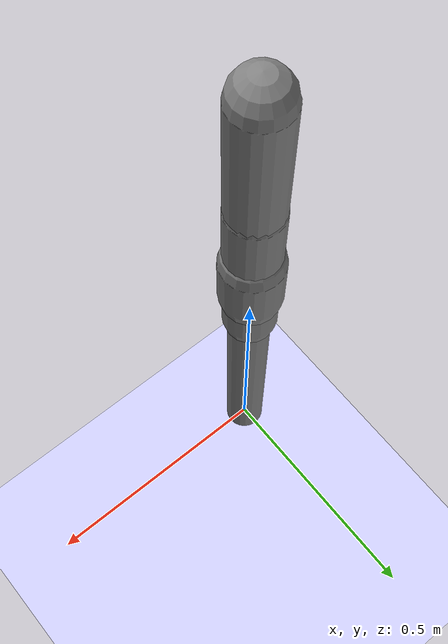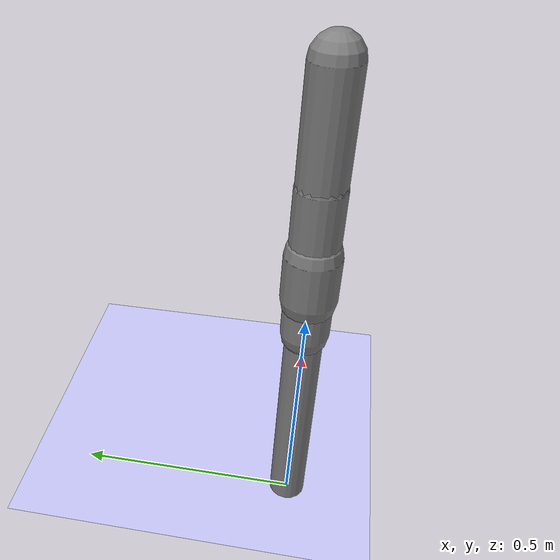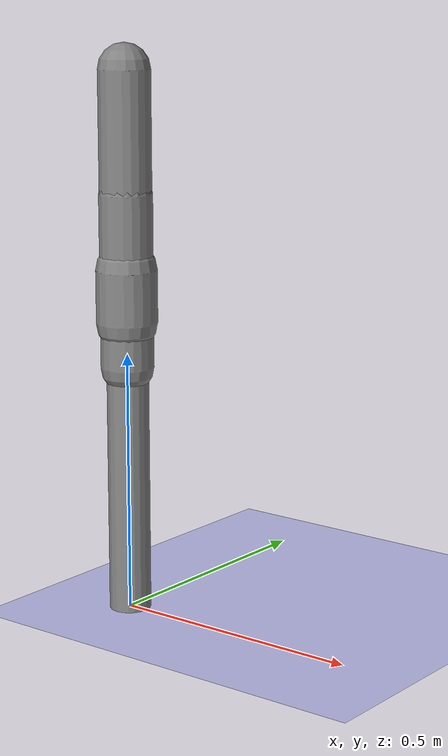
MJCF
<?xml version='1.0' encoding='UTF-8'?>
<mujoco model="robot_model">
  <worldbody>
    <light name="light" pos="0 -3 10" dir="0 0.5 -1" diffuse=".8 .8 .8" specular="0.1 0.1 0.1"/>
    <geom name="floor" type="plane" size="10.0 10.0 0.1" pos="0 0 0" rgba="0.8 0.8 1 1" contype="2" conaffinity="1"/>
    <body name="limb0" pos="0 0 0">
      <geom type="capsule" fromto="0 0 0 0 0 0.596208529628742" size="0.04" density="990.1812429592799" contype="1" conaffinity="2"/>
      <site type="sphere" size="0.01" name="limb0_site0" pos="0 0 0.3439572576339297"/>
      <site type="sphere" size="0.01" name="limb0_site1" pos="0 0 0.561453242330809"/>
      <freejoint name="limb0_root"/>
      <body name="limb1" pos="0 0 0.3439572576339297">
        <geom type="capsule" fromto="0 0 0 0 0 0.2108483557747831" size="0.03176305440673138" density="688.7771406626807" contype="1" conaffinity="2"/>
        <site type="sphere" size="0.01" name="limb1_site0" pos="0 0 0.1315488757351795"/>
        <site type="sphere" size="0.01" name="limb1_site1" pos="0 0 0.20255461164896735"/>
        <body name="limb2" pos="0 0 0.1315488757351795">
          <geom type="capsule" fromto="0 0 0 0 0 0.328612757384137" size="0.05065179609246566" density="732.5468624136837" contype="1" conaffinity="2"/>
          <joint name="joint_limb1_limb2_0" type="hinge" axis="0 1 0" range="-79.19027832141104 79.19027832141104" damping="5.0"/>
        </body>
        <body name="limb3" pos="0 0 0.20255461164896735">
          <geom type="capsule" fromto="0 0 0 0 0 0.4823923729216987" size="0.02930993783622847" density="1063.016225397816" contype="1" conaffinity="2"/>
          <site type="sphere" size="0.01" name="limb3_site0" pos="0 0 0.21210766104123838"/>
          <site type="sphere" size="0.01" name="limb3_site1" pos="0 0 0.2445975136120204"/>
          <body name="limb4" pos="0 0 0.21210766104123838">
            <geom type="capsule" fromto="0 0 0 0 0 0.27490939239463524" size="0.04935019937932756" density="1200.0" contype="1" conaffinity="2"/>
            <joint name="joint_limb3_limb4_0" type="hinge" axis="0 1 0" range="-98.89882698854483 98.89882698854483" damping="5.0"/>
          </body>
          <body name="limb5" pos="0 0 0.2445975136120204">
            <geom type="capsule" fromto="0 0 0 0 0 0.1797215636428" size="0.026091798513952557" density="745.8119714770129" contype="1" conaffinity="2"/>
            <joint name="joint_limb3_limb5_0" type="hinge" axis="1 0 0" range="-43.50354587107485 43.50354587107485" damping="5.0"/>
          </body>
          <joint name="joint_limb1_limb3_0" type="hinge" axis="0 1 0" range="-113.63308743755412 113.63308743755412" damping="5.0"/>
        </body>
        <joint name="joint_limb0_limb1_0" type="hinge" axis="0 1 0" range="-72.78200781124774 72.78200781124774" damping="5.0"/>
      </body>
      <body name="limb6" pos="0 0 0.561453242330809">
        <geom type="capsule" fromto="0 0 0 0 0 0.1" size="0.058227424009137524" density="1200.0" contype="1" conaffinity="2"/>
        <site type="sphere" size="0.01" name="limb6_site0" pos="0 0 0.0013737858616478583"/>
        <site type="sphere" size="0.01" name="limb6_site1" pos="0 0 0.008460553869846232"/>
        <body name="limb7" pos="0 0 0.0013737858616478583">
          <geom type="capsule" fromto="0 0 0 0 0 0.4337999318882061" size="0.03354519618055929" density="490.19423536920465" contype="1" conaffinity="2"/>
          <joint name="joint_limb6_limb7_0" type="hinge" axis="1 0 0" range="-41.24749861054585 41.24749861054585" damping="5.0"/>
        </body>
        <body name="limb8" pos="0 0 0.008460553869846232">
          <geom type="capsule" fromto="0 0 0 0 0 0.41995548369708" size="0.04445784085479879" density="1111.609474068153" contype="1" conaffinity="2"/>
          <joint name="joint_limb6_limb8_0" type="hinge" axis="0 1 0" range="-73.56317581328558 73.56317581328558" damping="5.0"/>
        </body>
        <joint name="joint_limb0_limb6_0" type="hinge" axis="0 1 0" range="-46.186401585393725 46.186401585393725" damping="5.0"/>
      </body>
    </body>
  </worldbody>
  <actuator>
    <position name="position_actuator_joint_limb0_limb1_0" joint="joint_limb0_limb1_0" gear="1.0330237717590445" inheritrange="1" kp="100.0"/>
    <position name="position_actuator_joint_limb1_limb2_0" joint="joint_limb1_limb2_0" gear="1.0104857860709995" inheritrange="1" kp="100.0"/>
    <position name="position_actuator_joint_limb1_limb3_0" joint="joint_limb1_limb3_0" gear="1.088244334155184" inheritrange="1" kp="100.0"/>
    <position name="position_actuator_joint_limb3_limb4_0" joint="joint_limb3_limb4_0" gear="1.1120952926298953" inheritrange="1" kp="100.0"/>
    <position name="position_actuator_joint_limb3_limb5_0" joint="joint_limb3_limb5_0" gear="1.5432977976206512" inheritrange="1" kp="100.0"/>
    <position name="position_actuator_joint_limb0_limb6_0" joint="joint_limb0_limb6_0" gear="0.5181521235082891" inheritrange="1" kp="100.0"/>
    <position name="position_actuator_joint_limb6_limb7_0" joint="joint_limb6_limb7_0" gear="1.9279363917577494" inheritrange="1" kp="100.0"/>
    <position name="position_actuator_joint_limb6_limb8_0" joint="joint_limb6_limb8_0" gear="1.7133838774967307" inheritrange="1" kp="100.0"/>
  </actuator>
</mujoco>
